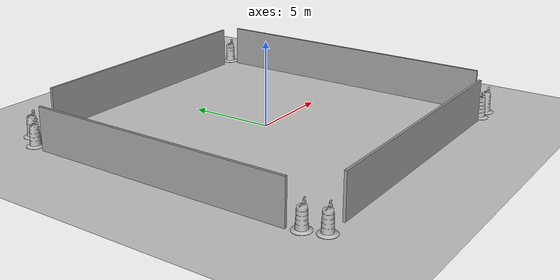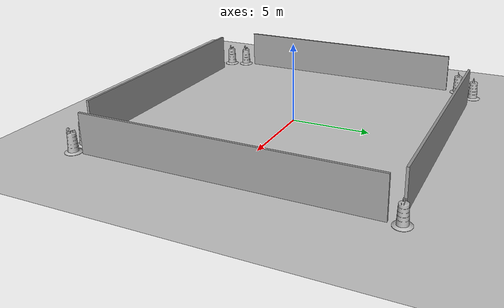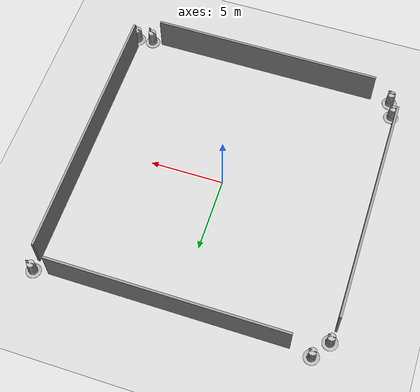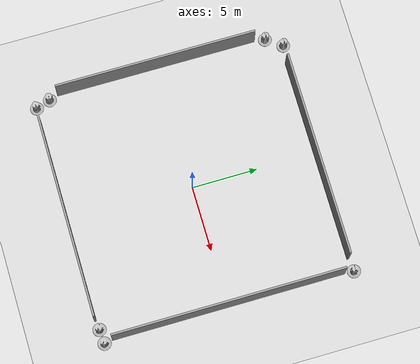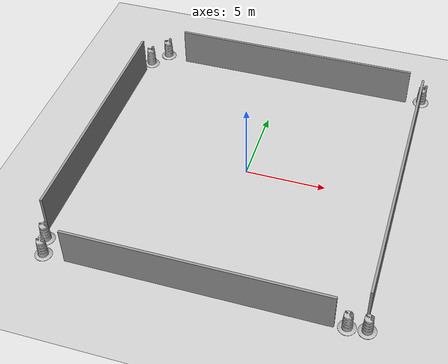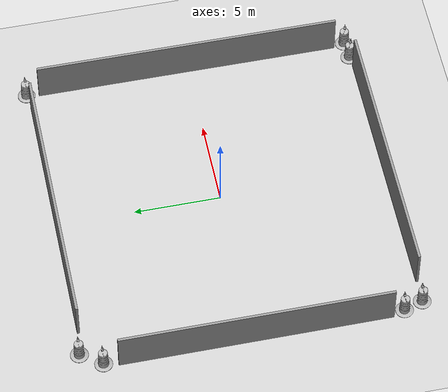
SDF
<sdf version="1.7">
 <world name="default">
  <light name="sun" type="directional">
   <pose>0 0 10 0 -0 0</pose>
   <diffuse>0.8 0.8 0.8 1</diffuse>
   <specular>0.2 0.2 0.2 1</specular>
   <attenuation>
    <range>1000</range>
    <constant>0.9</constant>
    <linear>0.01</linear>
    <quadratic>0.001</quadratic>
   </attenuation>
   <direction>-0.5 0.1 -0.9</direction>
   <spot><inner_angle>0</inner_angle><outer_angle>0</outer_angle><falloff>0</falloff></spot>
  </light>
  <model name="ground_plane">
   <static>1</static>
   <link name="link">
    <collision name="collision">
     <geometry><plane><normal>0 0 1</normal><size>100 100</size></plane></geometry>
     <surface><friction><ode><mu>100</mu><mu2>50</mu2></ode></friction></surface>
    </collision>
    <visual name="visual">
     <cast_shadows>0</cast_shadows>
     <geometry><plane><normal>0 0 1</normal><size>100 100</size></plane></geometry>
     <material>
      <script><uri>file://media/materials/scripts/gazebo.material</uri><name>Gazebo/Grey</name></script>
     </material>
    </visual>
   </link>
  </model>
  <gravity>0 0 -9.8</gravity>
  <magnetic_field>6e-06 2.3e-05 -4.2e-05</magnetic_field>
  <atmosphere type="adiabatic"/>
  <physics type="ode">
   <max_step_size>0.001</max_step_size>
   <real_time_factor>1</real_time_factor>
   <real_time_update_rate>1000</real_time_update_rate>
  </physics>
  <scene><ambient>0.4 0.4 0.4 1</ambient><background>0.7 0.7 0.7 1</background><shadows>1</shadows></scene>
  <audio><device>default</device></audio>
  <spherical_coordinates>
   <surface_model>EARTH_WGS84</surface_model>
   <latitude_deg>0</latitude_deg>
   <longitude_deg>0</longitude_deg>
   <elevation>0</elevation>
   <heading_deg>0</heading_deg>
  </spherical_coordinates>
  <model name="Construction Barrel">
   <link name="link">
    <inertial>
     <pose>0 0 0.4 0 -0 0</pose>
     <mass>500</mass>
     <inertia><ixx>51.2096</ixx><iyy>51.2096</iyy><izz>25</izz><ixy>0</ixy><ixz>0</ixz><iyz>0</iyz></inertia>
    </inertial>
    <collision name="collision">
     <geometry><mesh><uri>model://construction_barrel/meshes/construction_barrel.dae</uri></mesh></geometry>
    </collision>
    <visual name="visual">
     <geometry><mesh><uri>model://construction_barrel/meshes/construction_barrel.dae</uri></mesh></geometry>
    </visual>
   </link>
   <pose>-9.48932 -8.48088 -4e-06 -3e-06 -1e-05 -1.3e-05</pose>
  </model>
  <model name="Construction Barrel_clone">
   <link name="link">
    <inertial>
     <pose>0 0 0.4 0 -0 0</pose>
     <mass>500</mass>
     <inertia><ixx>51.2096</ixx><iyy>51.2096</iyy><izz>25</izz><ixy>0</ixy><ixz>0</ixz><iyz>0</iyz></inertia>
    </inertial>
    <collision name="collision">
     <geometry><mesh><uri>model://construction_barrel/meshes/construction_barrel.dae</uri></mesh></geometry>
    </collision>
    <visual name="visual">
     <geometry><mesh><uri>model://construction_barrel/meshes/construction_barrel.dae</uri></mesh></geometry>
    </visual>
   </link>
   <pose>-9.12756 -9.58141 -3e-06 6e-06 1.1e-05 -1.8e-05</pose>
  </model>
  <model name="Construction Barrel_clone_clone">
   <link name="link">
    <inertial>
     <pose>0 0 0.4 0 -0 0</pose>
     <mass>500</mass>
     <inertia><ixx>51.2096</ixx><iyy>51.2096</iyy><izz>25</izz><ixy>0</ixy><ixz>0</ixz><iyz>0</iyz></inertia>
    </inertial>
    <collision name="collision">
     <geometry><mesh><uri>model://construction_barrel/meshes/construction_barrel.dae</uri></mesh></geometry>
    </collision>
    <visual name="visual">
     <geometry><mesh><uri>model://construction_barrel/meshes/construction_barrel.dae</uri></mesh></geometry>
    </visual>
   </link>
   <pose>9.44777 -9.42606 -2e-06 7e-06 -4e-06 -0.385471</pose>
  </model>
  <model name="Construction Barrel_clone_clone_0">
   <link name="link">
    <inertial>
     <pose>0 0 0.4 0 -0 0</pose>
     <mass>500</mass>
     <inertia><ixx>51.2096</ixx><iyy>51.2096</iyy><izz>25</izz><ixy>0</ixy><ixz>0</ixz><iyz>0</iyz></inertia>
    </inertial>
    <collision name="collision">
     <geometry><mesh><uri>model://construction_barrel/meshes/construction_barrel.dae</uri></mesh></geometry>
    </collision>
    <visual name="visual">
     <geometry><mesh><uri>model://construction_barrel/meshes/construction_barrel.dae</uri></mesh></geometry>
    </visual>
   </link>
   <pose>-8.72693 9.69699 -2e-06 1e-06 8e-06 -2.2e-05</pose>
  </model>
  <model name="Construction Barrel_clone_clone_1">
   <link name="link">
    <inertial>
     <pose>0 0 0.4 0 -0 0</pose>
     <mass>500</mass>
     <inertia><ixx>51.2096</ixx><iyy>51.2096</iyy><izz>25</izz><ixy>0</ixy><ixz>0</ixz><iyz>0</iyz></inertia>
    </inertial>
    <collision name="collision">
     <geometry><mesh><uri>model://construction_barrel/meshes/construction_barrel.dae</uri></mesh></geometry>
    </collision>
    <visual name="visual">
     <geometry><mesh><uri>model://construction_barrel/meshes/construction_barrel.dae</uri></mesh></geometry>
    </visual>
   </link>
   <pose>-9.56927 8.49437 -5e-06 -9e-06 -9e-06 -2.6e-05</pose>
  </model>
  <model name="Construction Barrel_clone_clone_2">
   <link name="link">
    <inertial>
     <pose>0 0 0.4 0 -0 0</pose>
     <mass>500</mass>
     <inertia><ixx>51.2096</ixx><iyy>51.2096</iyy><izz>25</izz><ixy>0</ixy><ixz>0</ixz><iyz>0</iyz></inertia>
    </inertial>
    <collision name="collision">
     <geometry><mesh><uri>model://construction_barrel/meshes/construction_barrel.dae</uri></mesh></geometry>
    </collision>
    <visual name="visual">
     <geometry><mesh><uri>model://construction_barrel/meshes/construction_barrel.dae</uri></mesh></geometry>
    </visual>
   </link>
   <pose>9.39028 9.66623 -2e-06 7e-06 -2e-06 -2.7e-05</pose>
  </model>
  <model name="Construction Barrel_clone_clone_3">
   <link name="link">
    <inertial>
     <pose>0 0 0.4 0 -0 0</pose>
     <mass>500</mass>
     <inertia><ixx>51.2096</ixx><iyy>51.2096</iyy><izz>25</izz><ixy>0</ixy><ixz>0</ixz><iyz>0</iyz></inertia>
    </inertial>
    <collision name="collision">
     <geometry><mesh><uri>model://construction_barrel/meshes/construction_barrel.dae</uri></mesh></geometry>
    </collision>
    <visual name="visual">
     <geometry><mesh><uri>model://construction_barrel/meshes/construction_barrel.dae</uri></mesh></geometry>
    </visual>
   </link>
   <pose>8.37717 -9.5124 -0 -0 -0 -0.47318</pose>
  </model>
  <model name="walls">
   <pose>-0.205844 -0.057294 0 0 -0 0</pose>
   <link name="Wall_36">
    <collision name="Wall_36_Collision">
     <geometry><box><size>15.5 0.15 2.5</size></box></geometry>
     <pose>0 0 1.25 0 -0 0</pose>
    </collision>
    <visual name="Wall_36_Visual">
     <pose>0 0 1.25 0 -0 0</pose>
     <geometry><box><size>15.5 0.15 2.5</size></box></geometry>
     <material>
      <script><uri>file://media/materials/scripts/gazebo.material</uri><name>Gazebo/Grey</name></script>
      <ambient>1 1 1 1</ambient>
     </material>
     <meta><layer>0</layer></meta>
    </visual>
    <pose>0.157395 -9.56108 0 0 -0 0</pose>
   </link>
   <link name="Wall_45">
    <collision name="Wall_45_Collision">
     <geometry><box><size>17.75 0.15 2.5</size></box></geometry>
     <pose>0 0 1.25 0 -0 0</pose>
    </collision>
    <visual name="Wall_45_Visual">
     <pose>0 0 1.25 0 -0 0</pose>
     <geometry><box><size>17.75 0.15 2.5</size></box></geometry>
     <material>
      <script><uri>file://media/materials/scripts/gazebo.material</uri><name>Gazebo/Grey</name></script>
      <ambient>1 1 1 1</ambient>
     </material>
     <meta><layer>0</layer></meta>
    </visual>
    <pose>9.53056 0.12511 0 0 -0 1.5708</pose>
   </link>
   <link name="Wall_48">
    <collision name="Wall_48_Collision">
     <geometry><box><size>15.75 0.15 2.5</size></box></geometry>
     <pose>0 0 1.25 0 -0 0</pose>
    </collision>
    <visual name="Wall_48_Visual">
     <pose>0 0 1.25 0 -0 0</pose>
     <geometry><box><size>15.75 0.15 2.5</size></box></geometry>
     <material>
      <script><uri>file://media/materials/scripts/gazebo.material</uri><name>Gazebo/Grey</name></script>
      <ambient>1 1 1 1</ambient>
     </material>
     <meta><layer>0</layer></meta>
    </visual>
    <pose>0.740373 9.56108 0 0 -0 3.14159</pose>
   </link>
   <link name="Wall_54">
    <collision name="Wall_54_Collision">
     <geometry><box><size>15.5 0.15 2.5</size></box></geometry>
     <pose>0 0 1.25 0 -0 0</pose>
    </collision>
    <visual name="Wall_54_Visual">
     <pose>0 0 1.25 0 -0 0</pose>
     <geometry><box><size>15.5 0.15 2.5</size></box></geometry>
     <material>
      <script><uri>file://media/materials/scripts/gazebo.material</uri><name>Gazebo/Grey</name></script>
      <ambient>1 1 1 1</ambient>
     </material>
     <meta><layer>0</layer></meta>
    </visual>
    <pose>-9.53056 -0.011786 0 0 -0 -1.5708</pose>
   </link>
   <static>1</static>
  </model>
 </world>
</sdf>
